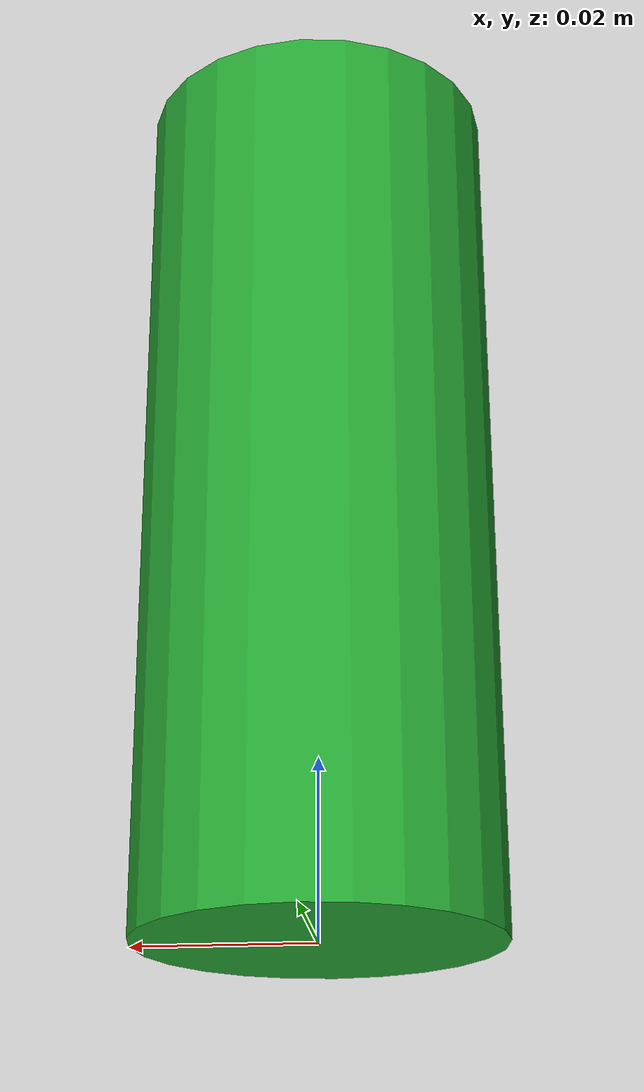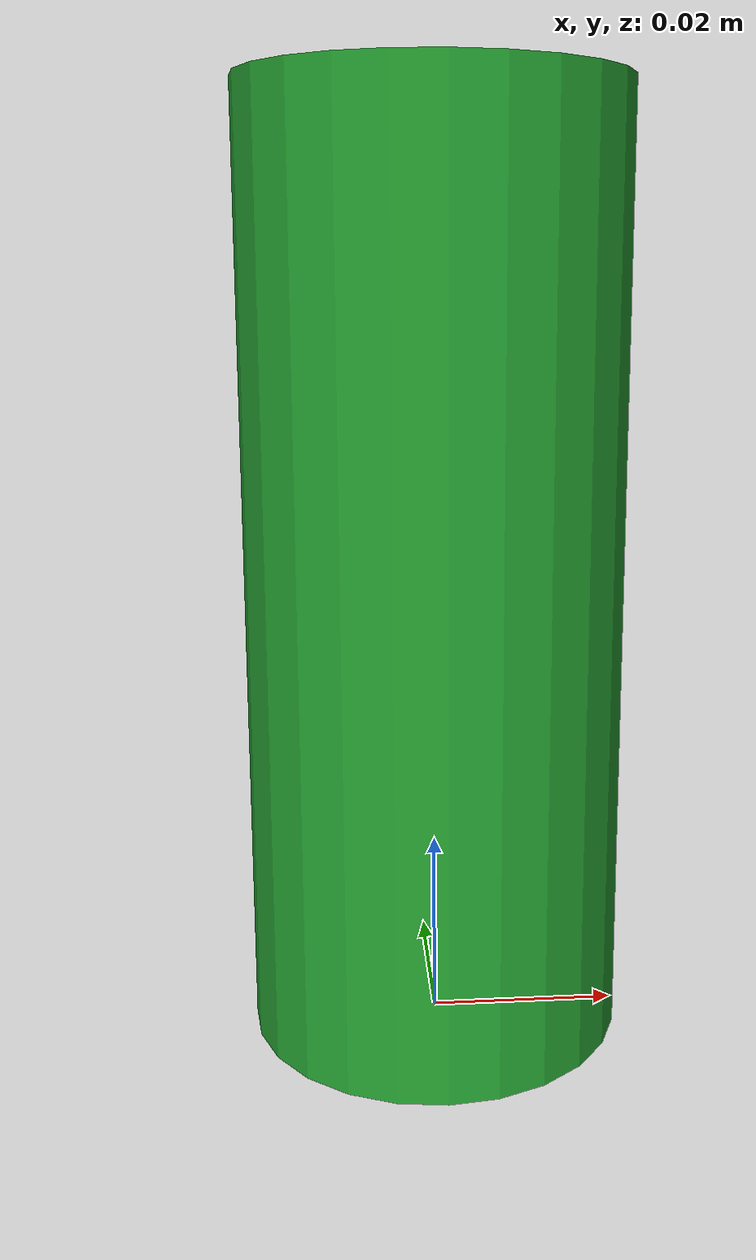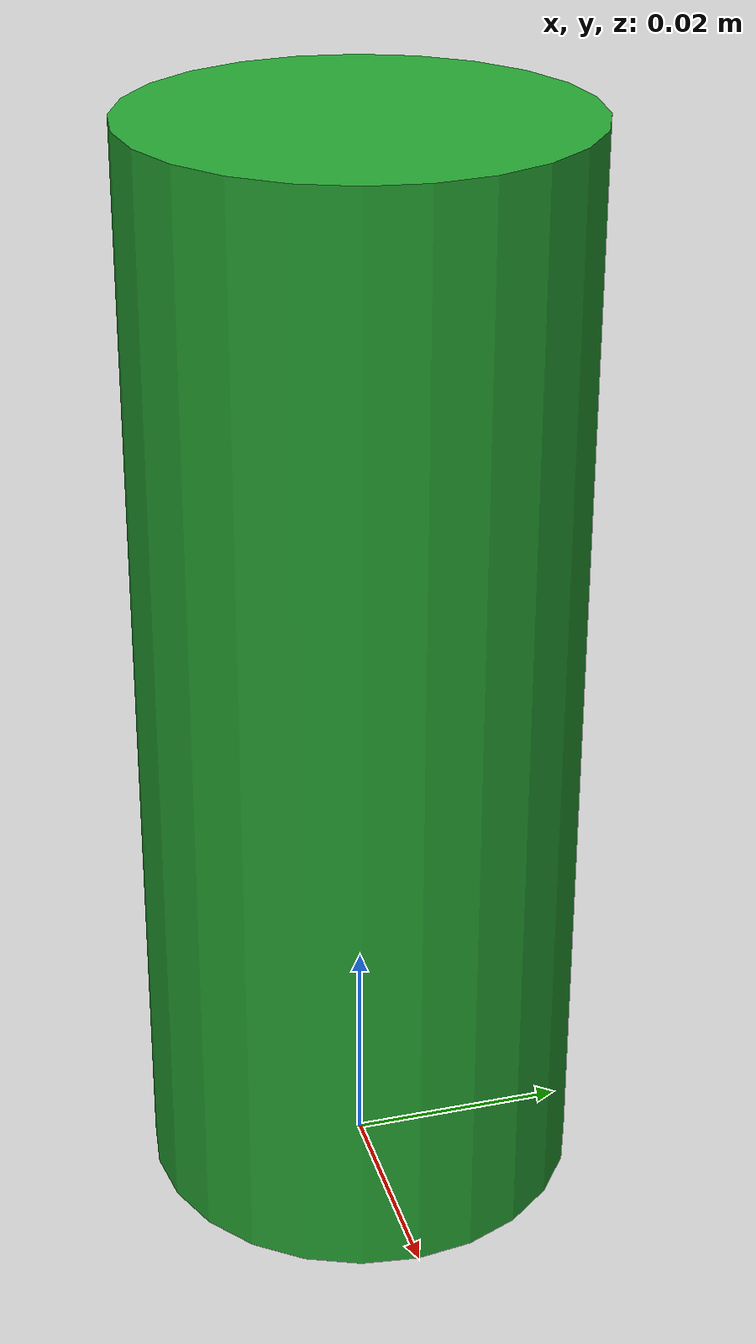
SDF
<?xml version="1.0" ?>
<sdf version="1.5">
  <model name="small_cylinder">
    <static>false</static>
    <link name="link">
      <pose>0 0 0.05 0 0 0</pose>

      <!-- Inerzia -->
      <inertial>
        <mass>0.05</mass>
        <inertia>
          <ixx>1e-4</ixx>
          <iyy>1e-4</iyy>
          <izz>1e-4</izz>
          <ixy>0.0</ixy>
          <ixz>0.0</ixz>
          <iyz>0.0</iyz>
        </inertia>
      </inertial>

      <!-- Collisione -->
      <collision name="collision">
        <geometry>
          <cylinder>
            <radius>0.02</radius>  <!-- 2 cm -->
            <length>0.1</length>    <!-- 10 cm -->
          </cylinder>
        </geometry>
          <surface>
            <contact>
              <ode>
                <max_contacts>3</max_contacts> <!-- o anche 2 -->
              </ode>
            </contact>
            <friction>
              <ode>
                <mu>0.8</mu>
                <mu2>0.8</mu2>
              </ode>
            </friction>
          </surface>
      </collision>

      <!-- Visuale -->
      <visual name="visual">
        <geometry>
          <cylinder>
            <radius>0.02</radius>
            <length>0.1</length>
          </cylinder>
        </geometry>
        <material>
          <script>
            <uri>file://media/materials/scripts/gazebo.material</uri>
            <name>Gazebo/Green</name>
          </script>
        </material>
      </visual>

    </link>
  </model>
</sdf>
